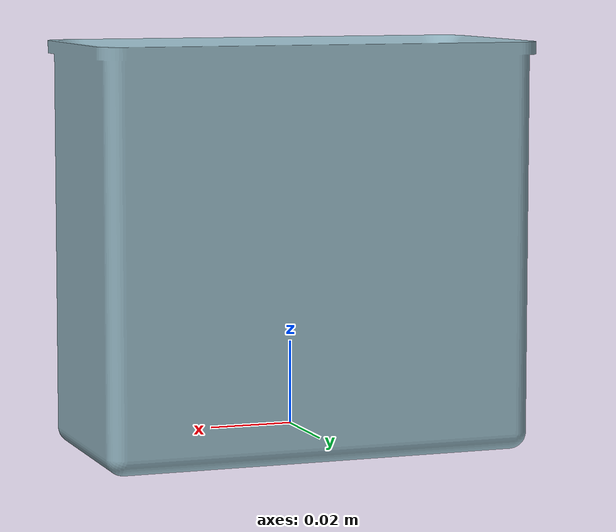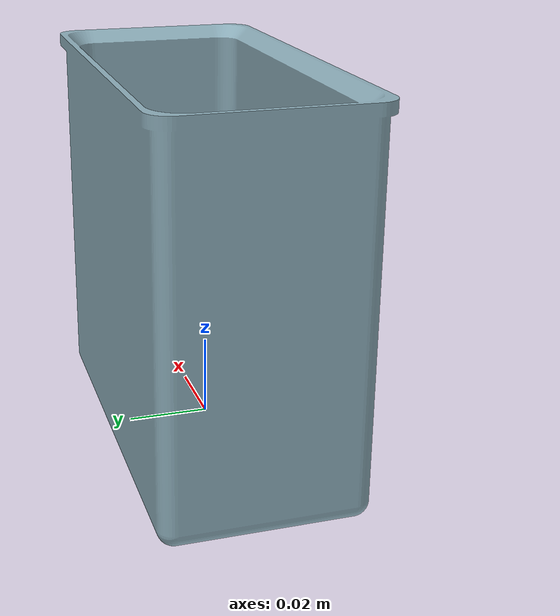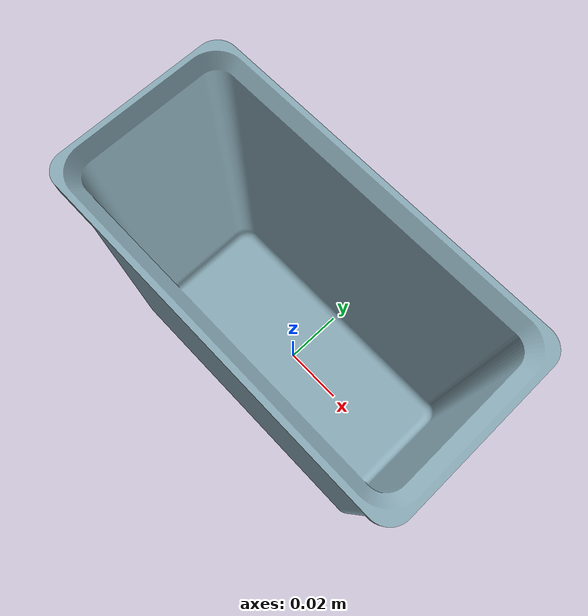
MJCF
<?xml version='1.0' encoding='utf-8'?>
<mujoco model="24-slide staining container | static asset inspection">
  <compiler angle="radian" />
  <visual>
    <global offwidth="1000" offheight="600" />
    <headlight ambient=".4 .4 .4" diffuse=".6 .6 .6" />
  </visual>
  <asset>
    <texture type="skybox" builtin="gradient" rgb1=".92 .95 .97" rgb2=".70 .78 .84" width="512" height="3072" />
    <mesh name="rack24_jar_0" file="meshes/rack24_jar_0.obj" inertia="shell" />
  </asset>
  <worldbody>
    <geom type="mesh" mesh="rack24_jar_0" rgba="0.55 0.68 0.73 1" contype="0" conaffinity="0" density="0" />
  </worldbody>
</mujoco>
